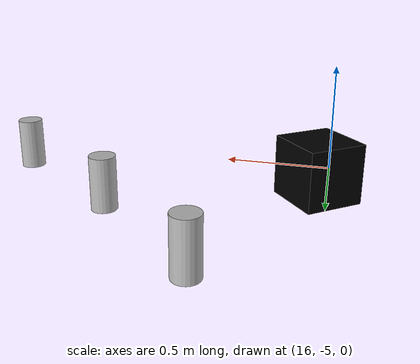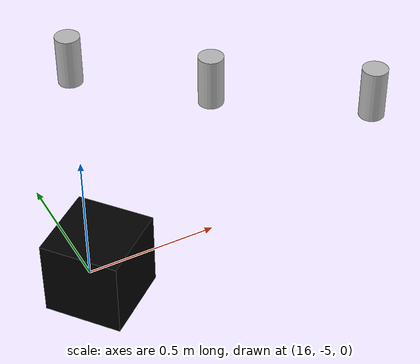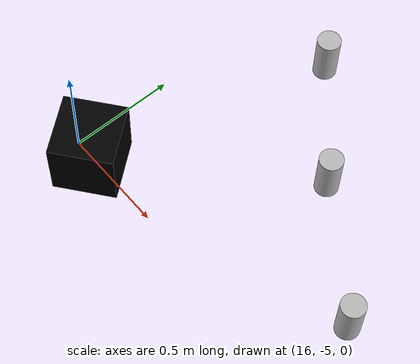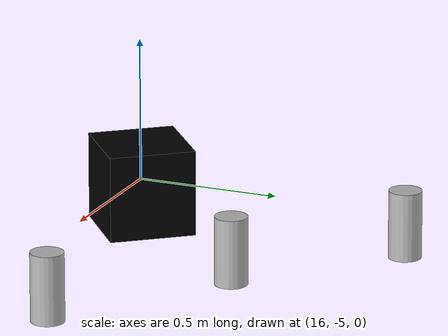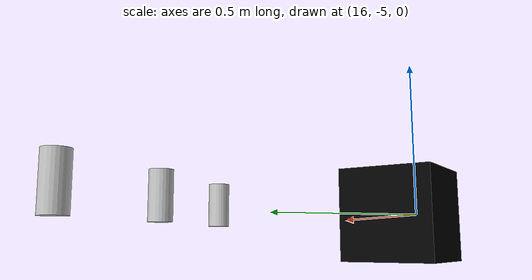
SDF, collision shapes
<?xml version='1.0'?>
<sdf version='1.7'>
  <model name='small_box_target_green'>
    <link name='link'>
      <self_collide>0</self_collide>
      <enable_wind>0</enable_wind>
      <kinematic>0</kinematic>
      <pose>16.0502 -4.97307 0 0 -0 0.673323</pose>
      <gravity>1</gravity>
      <inertial>
        <mass>1</mass>
        <pose>0 0 0 0 -0 0</pose>
        <inertia>
          <ixx>1</ixx>
          <ixy>0</ixy>
          <ixz>0</ixz>
          <iyy>1</iyy>
          <iyz>0</iyz>
          <izz>1</izz>
        </inertia>
      </inertial>
      <visual name='visual'>
        <geometry>
          <mesh>
            <uri>model://box_target_green/meshes/mesh.dae</uri>
            <scale>0.3 0.3 0.3</scale>
          </mesh>
        </geometry>
        <material>
          <shader type='pixel'>
            <normal_map>__default__</normal_map>
          </shader>
          <script>
            <name>ModelPreview_1::link::visual_MATERIAL_</name>
          </script>
          <ambient>0 0 0 1</ambient>
          <diffuse>0 0 0 1</diffuse>
          <specular>0 0 0 1</specular>
          <emissive>0 0 0 1</emissive>
        </material>
        <pose>0 0 0 0 -0 0</pose>
        <transparency>0</transparency>
        <cast_shadows>1</cast_shadows>
      </visual>
      <collision name='collision'>
        <laser_retro>0</laser_retro>
        <max_contacts>10</max_contacts>
        <pose>0 0 0 0 -0 0</pose>
        <geometry>
          <box>
            <size>0.3 0.3 0.3</size>
          </box>
        </geometry>
        <surface>
          <friction>
            <ode>
              <mu>0.6</mu>
              <mu2>0.7</mu2>
              <fdir1>0 0 0</fdir1>
              <slip1>0</slip1>
              <slip2>0</slip2>
            </ode>
            <torsional>
              <coefficient>1</coefficient>
              <patch_radius>0</patch_radius>
              <surface_radius>0</surface_radius>
              <use_patch_radius>1</use_patch_radius>
              <ode>
                <slip>0</slip>
              </ode>
            </torsional>
          </friction>
          <bounce>
            <restitution_coefficient>0</restitution_coefficient>
            <threshold>1e+06</threshold>
          </bounce>
          <contact>
            <collide_without_contact>0</collide_without_contact>
            <collide_without_contact_bitmask>1</collide_without_contact_bitmask>
            <collide_bitmask>1</collide_bitmask>
            <ode>
              <soft_cfm>0</soft_cfm>
              <soft_erp>0.2</soft_erp>
              <kp>1e+13</kp>
              <kd>1</kd>
              <max_vel>0.01</max_vel>
              <min_depth>0</min_depth>
            </ode>
            <bullet>
              <split_impulse>1</split_impulse>
              <split_impulse_penetration_threshold>-0.01</split_impulse_penetration_threshold>
              <soft_cfm>0</soft_cfm>
              <soft_erp>0.2</soft_erp>
              <kp>1e+13</kp>
              <kd>1</kd>
            </bullet>
          </contact>
        </surface>
      </collision>
    </link>
    <model name='beer'>
      <link name='link'>
        <pose>0 0 0.115 0 -0 0</pose>
        <inertial>
          <mass>0.39</mass>
          <inertia>
            <ixx>0.00058</ixx>
            <ixy>0</ixy>
            <ixz>0</ixz>
            <iyy>0.00058</iyy>
            <iyz>0</iyz>
            <izz>0.00019</izz>
          </inertia>
        </inertial>
        <collision name='collision'>
          <geometry>
            <cylinder>
              <radius>0.055</radius>
              <length>0.23</length>
            </cylinder>
          </geometry>
        </collision>
        <visual name='visual'>
          <geometry>
            <cylinder>
              <radius>0.055</radius>
              <length>0.23</length>
            </cylinder>
          </geometry>
          <material>
            <script>
              <uri>model://beer/materials/scripts</uri>
              <uri>model://beer/materials/textures</uri>
              <name>Beer/Diffuse</name>
            </script>
          </material>
        </visual>
      </link>
      <pose>16.4132 -3.87141 0 0 -0 0</pose>
    </model>
    <model name='beer_0'>
      <link name='link'>
        <pose>0 0 0.115 0 -0 0</pose>
        <inertial>
          <mass>0.39</mass>
          <inertia>
            <ixx>0.00058</ixx>
            <ixy>0</ixy>
            <ixz>0</ixz>
            <iyy>0.00058</iyy>
            <iyz>0</iyz>
            <izz>0.00019</izz>
          </inertia>
        </inertial>
        <collision name='collision'>
          <geometry>
            <cylinder>
              <radius>0.055</radius>
              <length>0.23</length>
            </cylinder>
          </geometry>
        </collision>
        <visual name='visual'>
          <geometry>
            <cylinder>
              <radius>0.055</radius>
              <length>0.23</length>
            </cylinder>
          </geometry>
          <material>
            <script>
              <uri>model://beer/materials/scripts</uri>
              <uri>model://beer/materials/textures</uri>
              <name>Beer/Diffuse</name>
            </script>
          </material>
        </visual>
      </link>
      <pose>17.425 -4.6878 0 0 -0 0</pose>
    </model>
    <model name='beer_1'>
      <link name='link'>
        <pose>0 0 0.115 0 -0 0</pose>
        <inertial>
          <mass>0.39</mass>
          <inertia>
            <ixx>0.00058</ixx>
            <ixy>0</ixy>
            <ixz>0</ixz>
            <iyy>0.00058</iyy>
            <iyz>0</iyz>
            <izz>0.00019</izz>
          </inertia>
        </inertial>
        <collision name='collision'>
          <geometry>
            <cylinder>
              <radius>0.055</radius>
              <length>0.23</length>
            </cylinder>
          </geometry>
        </collision>
        <visual name='visual'>
          <geometry>
            <cylinder>
              <radius>0.055</radius>
              <length>0.23</length>
            </cylinder>
          </geometry>
          <material>
            <script>
              <uri>model://beer/materials/scripts</uri>
              <uri>model://beer/materials/textures</uri>
              <name>Beer/Diffuse</name>
            </script>
          </material>
        </visual>
      </link>
      <pose>16.8766 -4.29256 0 0 -0 0</pose>
    </model>
    <static>1</static>
    <allow_auto_disable>1</allow_auto_disable>
  </model>
</sdf>
